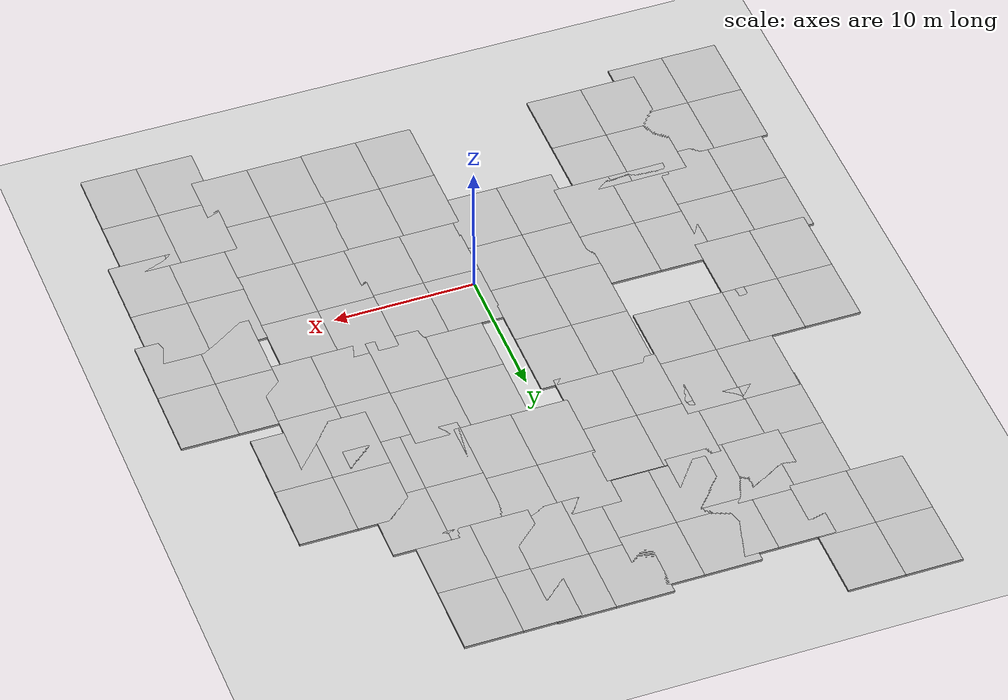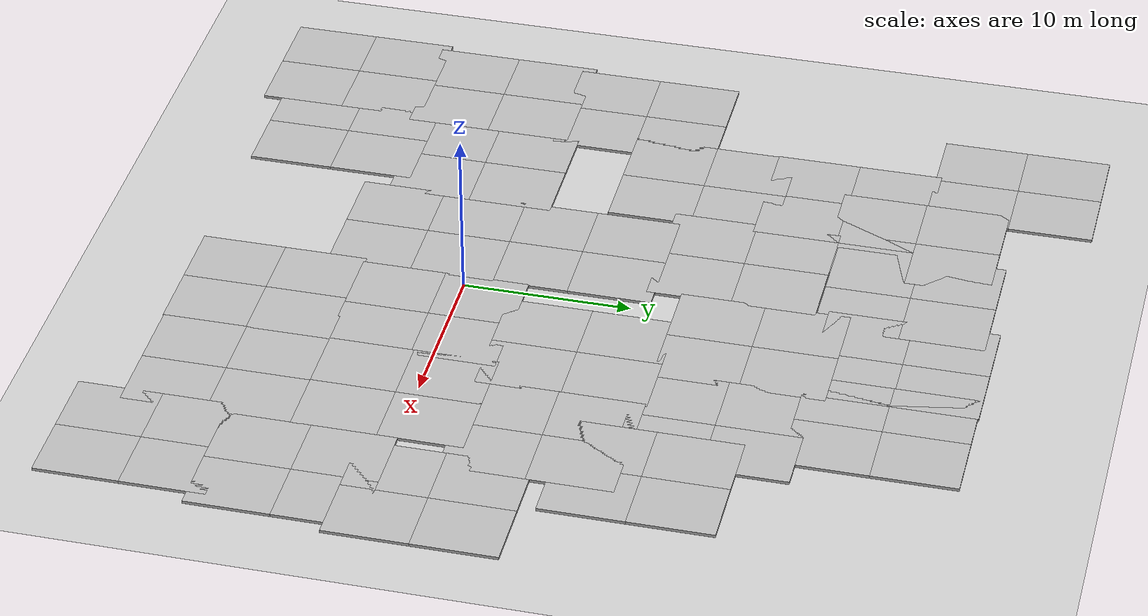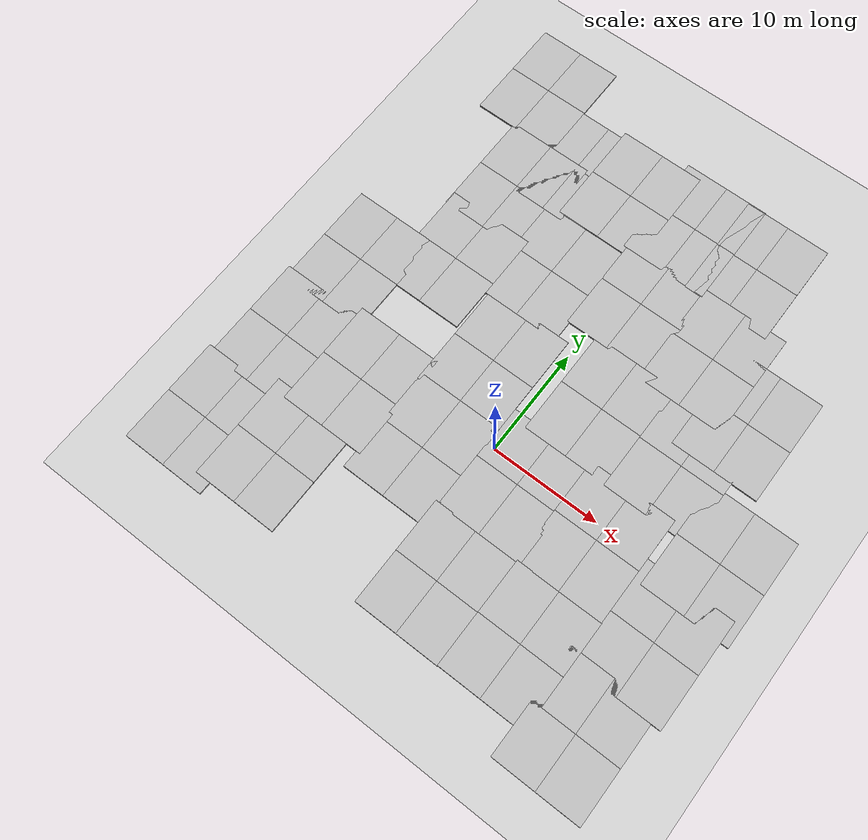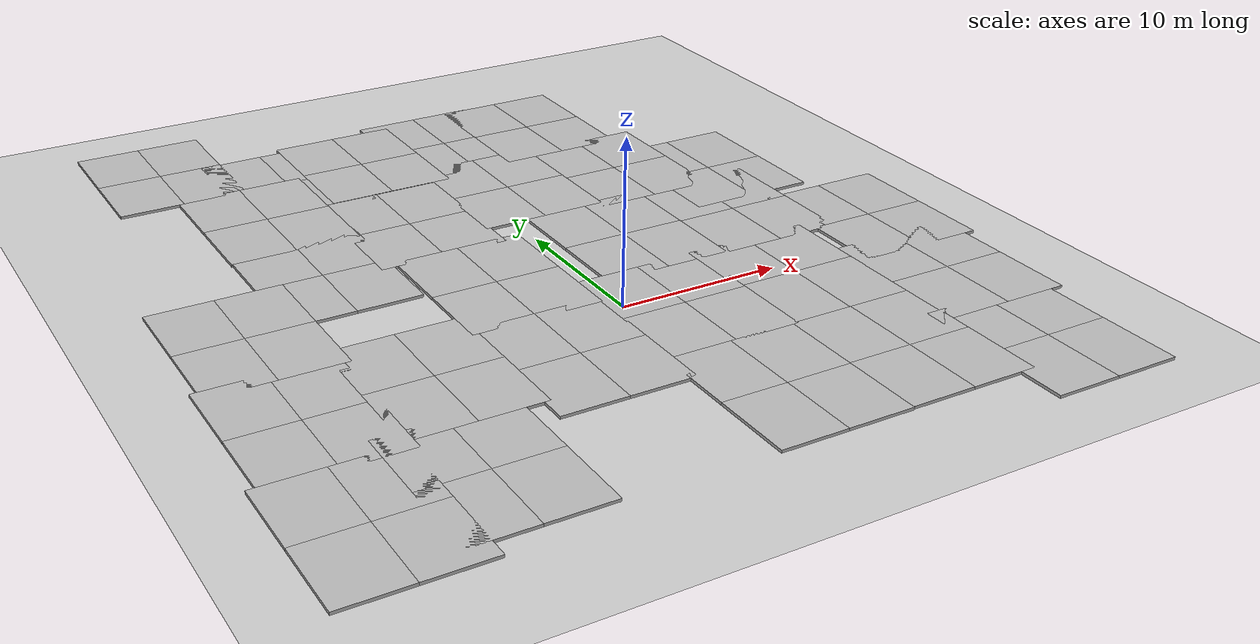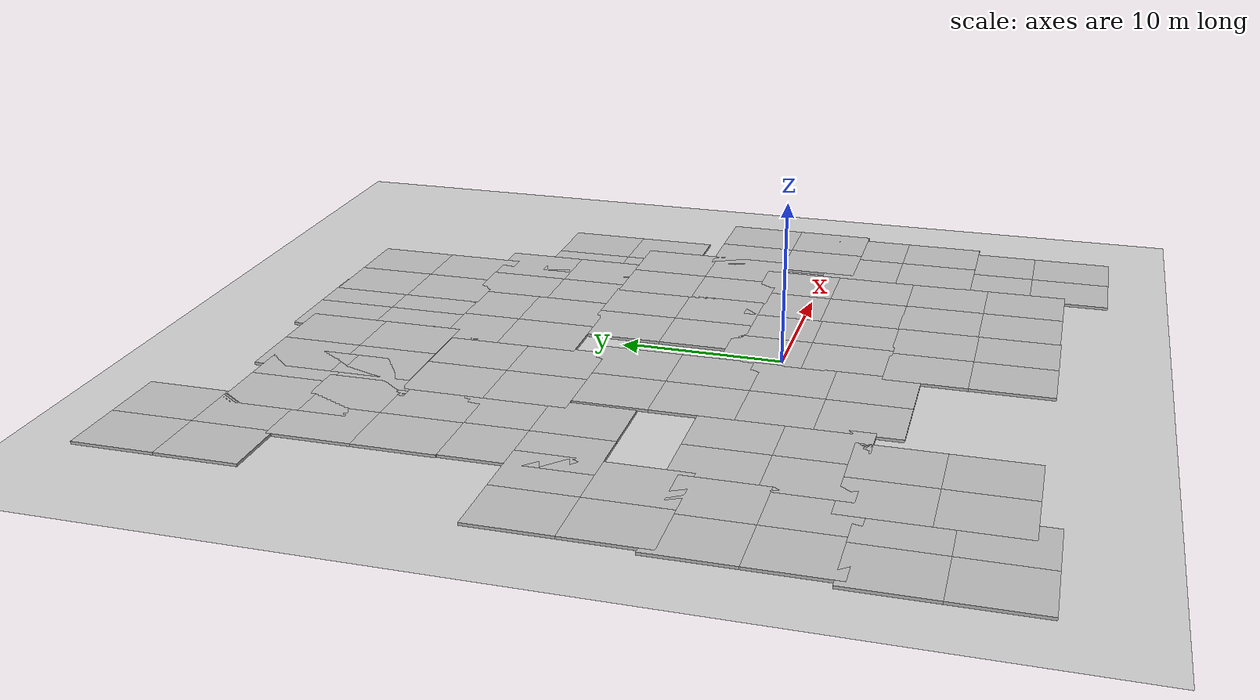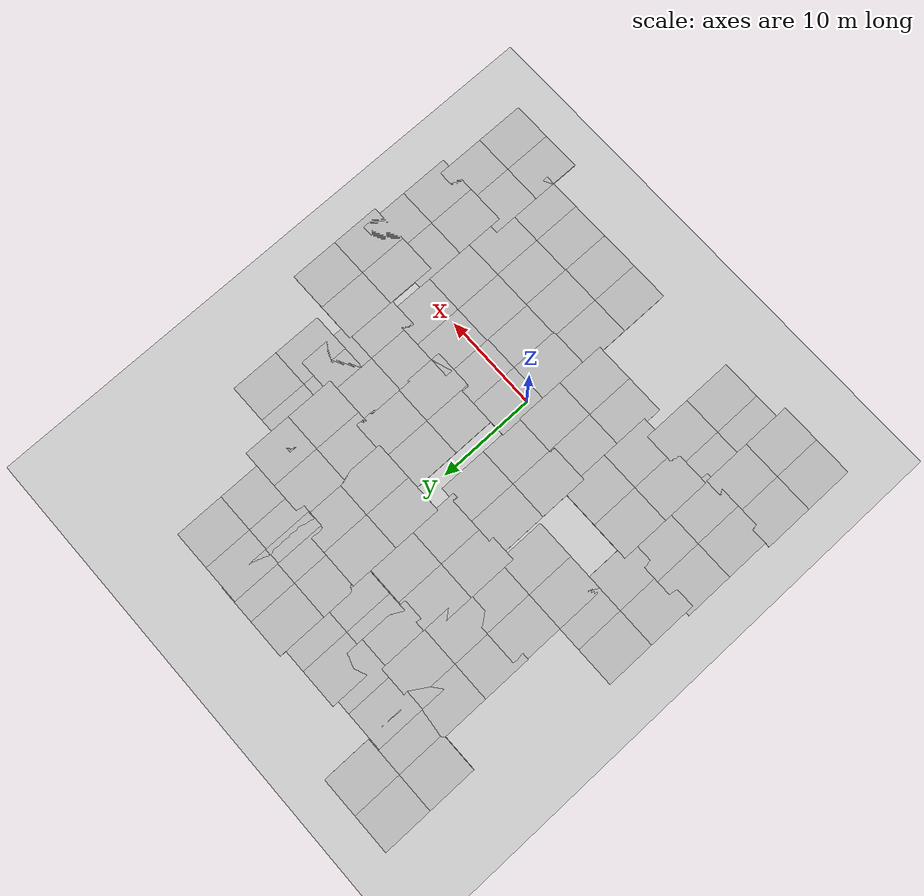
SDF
<sdf version="1.6">
 <world name="default">
  <model name="ground_plane">
   <static>1</static>
   <link name="link">
    <collision name="collision">
     <geometry><plane><normal>0 0 1</normal><size>100 100</size></plane></geometry>
     <surface><friction><ode><mu>100</mu><mu2>50</mu2></ode></friction></surface>
    </collision>
    <visual name="visual">
     <cast_shadows>0</cast_shadows>
     <geometry><plane><normal>0 0 1</normal><size>100 100</size></plane></geometry>
     <material>
      <script><uri>file://media/materials/scripts/gazebo.material</uri><name>Gazebo/Grey</name></script>
     </material>
    </visual>
   </link>
  </model>
  <model name="mud_box">
   <static>1</static>
   <link name="link">
    <collision name="collision"><geometry><box><size>8 10 0.2</size></box></geometry></collision>
    <visual name="visual_1">
     <pose>-2 2.5 0 0 -0 0</pose>
     <cast_shadows>0</cast_shadows>
     <geometry><box><size>4 5 0.2</size></box></geometry>
     <material>
      <script>
       <uri>model://mud_box/materials/scripts</uri>
       <uri>model://mud_box/materials/textures</uri>
       <name>vrc/mud</name>
      </script>
     </material>
    </visual>
    <visual name="visual_2">
     <pose>2 2.5 0 0 -0 0</pose>
     <cast_shadows>0</cast_shadows>
     <geometry><box><size>4 5 0.2</size></box></geometry>
     <material>
      <script>
       <uri>model://mud_box/materials/scripts</uri>
       <uri>model://mud_box/materials/textures</uri>
       <name>vrc/mud</name>
      </script>
     </material>
    </visual>
    <visual name="visual_3">
     <pose>2 -2.5 0 0 -0 0</pose>
     <cast_shadows>0</cast_shadows>
     <geometry><box><size>4 5 0.2</size></box></geometry>
     <material>
      <script>
       <uri>model://mud_box/materials/scripts</uri>
       <uri>model://mud_box/materials/textures</uri>
       <name>vrc/mud</name>
      </script>
     </material>
    </visual>
    <visual name="visual_4">
     <pose>-2 -2.5 0 0 -0 0</pose>
     <cast_shadows>0</cast_shadows>
     <geometry><box><size>4 5 0.2</size></box></geometry>
     <material>
      <script>
       <uri>model://mud_box/materials/scripts</uri>
       <uri>model://mud_box/materials/textures</uri>
       <name>vrc/mud</name>
      </script>
     </material>
    </visual>
   </link>
   <pose>10.8165 -11.0952 0 0 -0 0</pose>
  </model>
  <model name="mud_box_clone">
   <static>1</static>
   <link name="link">
    <collision name="collision"><geometry><box><size>8 10 0.2</size></box></geometry></collision>
    <visual name="visual_1">
     <pose>-2 2.5 0 0 -0 0</pose>
     <cast_shadows>0</cast_shadows>
     <geometry><box><size>4 5 0.2</size></box></geometry>
     <material>
      <script>
       <uri>model://mud_box/materials/scripts</uri>
       <uri>model://mud_box/materials/textures</uri>
       <name>vrc/mud</name>
      </script>
     </material>
    </visual>
    <visual name="visual_2">
     <pose>2 2.5 0 0 -0 0</pose>
     <cast_shadows>0</cast_shadows>
     <geometry><box><size>4 5 0.2</size></box></geometry>
     <material>
      <script>
       <uri>model://mud_box/materials/scripts</uri>
       <uri>model://mud_box/materials/textures</uri>
       <name>vrc/mud</name>
      </script>
     </material>
    </visual>
    <visual name="visual_3">
     <pose>2 -2.5 0 0 -0 0</pose>
     <cast_shadows>0</cast_shadows>
     <geometry><box><size>4 5 0.2</size></box></geometry>
     <material>
      <script>
       <uri>model://mud_box/materials/scripts</uri>
       <uri>model://mud_box/materials/textures</uri>
       <name>vrc/mud</name>
      </script>
     </material>
    </visual>
    <visual name="visual_4">
     <pose>-2 -2.5 0 0 -0 0</pose>
     <cast_shadows>0</cast_shadows>
     <geometry><box><size>4 5 0.2</size></box></geometry>
     <material>
      <script>
       <uri>model://mud_box/materials/scripts</uri>
       <uri>model://mud_box/materials/textures</uri>
       <name>vrc/mud</name>
      </script>
     </material>
    </visual>
   </link>
   <pose>2.87482 -11.1421 0 0 -0 0</pose>
  </model>
  <model name="mud_box_clone_0">
   <static>1</static>
   <link name="link">
    <collision name="collision"><geometry><box><size>8 10 0.2</size></box></geometry></collision>
    <visual name="visual_1">
     <pose>-2 2.5 0 0 -0 0</pose>
     <cast_shadows>0</cast_shadows>
     <geometry><box><size>4 5 0.2</size></box></geometry>
     <material>
      <script>
       <uri>model://mud_box/materials/scripts</uri>
       <uri>model://mud_box/materials/textures</uri>
       <name>vrc/mud</name>
      </script>
     </material>
    </visual>
    <visual name="visual_2">
     <pose>2 2.5 0 0 -0 0</pose>
     <cast_shadows>0</cast_shadows>
     <geometry><box><size>4 5 0.2</size></box></geometry>
     <material>
      <script>
       <uri>model://mud_box/materials/scripts</uri>
       <uri>model://mud_box/materials/textures</uri>
       <name>vrc/mud</name>
      </script>
     </material>
    </visual>
    <visual name="visual_3">
     <pose>2 -2.5 0 0 -0 0</pose>
     <cast_shadows>0</cast_shadows>
     <geometry><box><size>4 5 0.2</size></box></geometry>
     <material>
      <script>
       <uri>model://mud_box/materials/scripts</uri>
       <uri>model://mud_box/materials/textures</uri>
       <name>vrc/mud</name>
      </script>
     </material>
    </visual>
    <visual name="visual_4">
     <pose>-2 -2.5 0 0 -0 0</pose>
     <cast_shadows>0</cast_shadows>
     <geometry><box><size>4 5 0.2</size></box></geometry>
     <material>
      <script>
       <uri>model://mud_box/materials/scripts</uri>
       <uri>model://mud_box/materials/textures</uri>
       <name>vrc/mud</name>
      </script>
     </material>
    </visual>
   </link>
   <pose>10.7714 -1.1411 0 0 -0 0</pose>
  </model>
  <model name="mud_box_clone_1">
   <static>1</static>
   <link name="link">
    <collision name="collision"><geometry><box><size>8 10 0.2</size></box></geometry></collision>
    <visual name="visual_1">
     <pose>-2 2.5 0 0 -0 0</pose>
     <cast_shadows>0</cast_shadows>
     <geometry><box><size>4 5 0.2</size></box></geometry>
     <material>
      <script>
       <uri>model://mud_box/materials/scripts</uri>
       <uri>model://mud_box/materials/textures</uri>
       <name>vrc/mud</name>
      </script>
     </material>
    </visual>
    <visual name="visual_2">
     <pose>2 2.5 0 0 -0 0</pose>
     <cast_shadows>0</cast_shadows>
     <geometry><box><size>4 5 0.2</size></box></geometry>
     <material>
      <script>
       <uri>model://mud_box/materials/scripts</uri>
       <uri>model://mud_box/materials/textures</uri>
       <name>vrc/mud</name>
      </script>
     </material>
    </visual>
    <visual name="visual_3">
     <pose>2 -2.5 0 0 -0 0</pose>
     <cast_shadows>0</cast_shadows>
     <geometry><box><size>4 5 0.2</size></box></geometry>
     <material>
      <script>
       <uri>model://mud_box/materials/scripts</uri>
       <uri>model://mud_box/materials/textures</uri>
       <name>vrc/mud</name>
      </script>
     </material>
    </visual>
    <visual name="visual_4">
     <pose>-2 -2.5 0 0 -0 0</pose>
     <cast_shadows>0</cast_shadows>
     <geometry><box><size>4 5 0.2</size></box></geometry>
     <material>
      <script>
       <uri>model://mud_box/materials/scripts</uri>
       <uri>model://mud_box/materials/textures</uri>
       <name>vrc/mud</name>
      </script>
     </material>
    </visual>
   </link>
   <pose>3.19815 -1.27428 0 0 -0 0</pose>
  </model>
  <model name="mud_box_clone_2">
   <static>1</static>
   <link name="link">
    <collision name="collision"><geometry><box><size>8 10 0.2</size></box></geometry></collision>
    <visual name="visual_1">
     <pose>-2 2.5 0 0 -0 0</pose>
     <cast_shadows>0</cast_shadows>
     <geometry><box><size>4 5 0.2</size></box></geometry>
     <material>
      <script>
       <uri>model://mud_box/materials/scripts</uri>
       <uri>model://mud_box/materials/textures</uri>
       <name>vrc/mud</name>
      </script>
     </material>
    </visual>
    <visual name="visual_2">
     <pose>2 2.5 0 0 -0 0</pose>
     <cast_shadows>0</cast_shadows>
     <geometry><box><size>4 5 0.2</size></box></geometry>
     <material>
      <script>
       <uri>model://mud_box/materials/scripts</uri>
       <uri>model://mud_box/materials/textures</uri>
       <name>vrc/mud</name>
      </script>
     </material>
    </visual>
    <visual name="visual_3">
     <pose>2 -2.5 0 0 -0 0</pose>
     <cast_shadows>0</cast_shadows>
     <geometry><box><size>4 5 0.2</size></box></geometry>
     <material>
      <script>
       <uri>model://mud_box/materials/scripts</uri>
       <uri>model://mud_box/materials/textures</uri>
       <name>vrc/mud</name>
      </script>
     </material>
    </visual>
    <visual name="visual_4">
     <pose>-2 -2.5 0 0 -0 0</pose>
     <cast_shadows>0</cast_shadows>
     <geometry><box><size>4 5 0.2</size></box></geometry>
     <material>
      <script>
       <uri>model://mud_box/materials/scripts</uri>
       <uri>model://mud_box/materials/textures</uri>
       <name>vrc/mud</name>
      </script>
     </material>
    </visual>
   </link>
   <pose>-4.68734 -3.40897 0 0 -0 0</pose>
  </model>
  <model name="mud_box_clone_3">
   <static>1</static>
   <link name="link">
    <collision name="collision"><geometry><box><size>8 10 0.2</size></box></geometry></collision>
    <visual name="visual_1">
     <pose>-2 2.5 0 0 -0 0</pose>
     <cast_shadows>0</cast_shadows>
     <geometry><box><size>4 5 0.2</size></box></geometry>
     <material>
      <script>
       <uri>model://mud_box/materials/scripts</uri>
       <uri>model://mud_box/materials/textures</uri>
       <name>vrc/mud</name>
      </script>
     </material>
    </visual>
    <visual name="visual_2">
     <pose>2 2.5 0 0 -0 0</pose>
     <cast_shadows>0</cast_shadows>
     <geometry><box><size>4 5 0.2</size></box></geometry>
     <material>
      <script>
       <uri>model://mud_box/materials/scripts</uri>
       <uri>model://mud_box/materials/textures</uri>
       <name>vrc/mud</name>
      </script>
     </material>
    </visual>
    <visual name="visual_3">
     <pose>2 -2.5 0 0 -0 0</pose>
     <cast_shadows>0</cast_shadows>
     <geometry><box><size>4 5 0.2</size></box></geometry>
     <material>
      <script>
       <uri>model://mud_box/materials/scripts</uri>
       <uri>model://mud_box/materials/textures</uri>
       <name>vrc/mud</name>
      </script>
     </material>
    </visual>
    <visual name="visual_4">
     <pose>-2 -2.5 0 0 -0 0</pose>
     <cast_shadows>0</cast_shadows>
     <geometry><box><size>4 5 0.2</size></box></geometry>
     <material>
      <script>
       <uri>model://mud_box/materials/scripts</uri>
       <uri>model://mud_box/materials/textures</uri>
       <name>vrc/mud</name>
      </script>
     </material>
    </visual>
   </link>
   <pose>-12.3073 -1.84403 0 0 -0 0</pose>
  </model>
  <model name="mud_box_clone_4">
   <static>1</static>
   <link name="link">
    <collision name="collision"><geometry><box><size>8 10 0.2</size></box></geometry></collision>
    <visual name="visual_1">
     <pose>-2 2.5 0 0 -0 0</pose>
     <cast_shadows>0</cast_shadows>
     <geometry><box><size>4 5 0.2</size></box></geometry>
     <material>
      <script>
       <uri>model://mud_box/materials/scripts</uri>
       <uri>model://mud_box/materials/textures</uri>
       <name>vrc/mud</name>
      </script>
     </material>
    </visual>
    <visual name="visual_2">
     <pose>2 2.5 0 0 -0 0</pose>
     <cast_shadows>0</cast_shadows>
     <geometry><box><size>4 5 0.2</size></box></geometry>
     <material>
      <script>
       <uri>model://mud_box/materials/scripts</uri>
       <uri>model://mud_box/materials/textures</uri>
       <name>vrc/mud</name>
      </script>
     </material>
    </visual>
    <visual name="visual_3">
     <pose>2 -2.5 0 0 -0 0</pose>
     <cast_shadows>0</cast_shadows>
     <geometry><box><size>4 5 0.2</size></box></geometry>
     <material>
      <script>
       <uri>model://mud_box/materials/scripts</uri>
       <uri>model://mud_box/materials/textures</uri>
       <name>vrc/mud</name>
      </script>
     </material>
    </visual>
    <visual name="visual_4">
     <pose>-2 -2.5 0 0 -0 0</pose>
     <cast_shadows>0</cast_shadows>
     <geometry><box><size>4 5 0.2</size></box></geometry>
     <material>
      <script>
       <uri>model://mud_box/materials/scripts</uri>
       <uri>model://mud_box/materials/textures</uri>
       <name>vrc/mud</name>
      </script>
     </material>
    </visual>
   </link>
   <pose>-4.70215 6.03232 0 0 -0 0</pose>
  </model>
  <model name="mud_box_clone_5">
   <static>1</static>
   <link name="link">
    <collision name="collision"><geometry><box><size>8 10 0.2</size></box></geometry></collision>
    <visual name="visual_1">
     <pose>-2 2.5 0 0 -0 0</pose>
     <cast_shadows>0</cast_shadows>
     <geometry><box><size>4 5 0.2</size></box></geometry>
     <material>
      <script>
       <uri>model://mud_box/materials/scripts</uri>
       <uri>model://mud_box/materials/textures</uri>
       <name>vrc/mud</name>
      </script>
     </material>
    </visual>
    <visual name="visual_2">
     <pose>2 2.5 0 0 -0 0</pose>
     <cast_shadows>0</cast_shadows>
     <geometry><box><size>4 5 0.2</size></box></geometry>
     <material>
      <script>
       <uri>model://mud_box/materials/scripts</uri>
       <uri>model://mud_box/materials/textures</uri>
       <name>vrc/mud</name>
      </script>
     </material>
    </visual>
    <visual name="visual_3">
     <pose>2 -2.5 0 0 -0 0</pose>
     <cast_shadows>0</cast_shadows>
     <geometry><box><size>4 5 0.2</size></box></geometry>
     <material>
      <script>
       <uri>model://mud_box/materials/scripts</uri>
       <uri>model://mud_box/materials/textures</uri>
       <name>vrc/mud</name>
      </script>
     </material>
    </visual>
    <visual name="visual_4">
     <pose>-2 -2.5 0 0 -0 0</pose>
     <cast_shadows>0</cast_shadows>
     <geometry><box><size>4 5 0.2</size></box></geometry>
     <material>
      <script>
       <uri>model://mud_box/materials/scripts</uri>
       <uri>model://mud_box/materials/textures</uri>
       <name>vrc/mud</name>
      </script>
     </material>
    </visual>
   </link>
   <pose>4.84706 7.94256 0 0 -0 0</pose>
  </model>
  <model name="mud_box_clone_6">
   <static>1</static>
   <link name="link">
    <collision name="collision"><geometry><box><size>8 10 0.2</size></box></geometry></collision>
    <visual name="visual_1">
     <pose>-2 2.5 0 0 -0 0</pose>
     <cast_shadows>0</cast_shadows>
     <geometry><box><size>4 5 0.2</size></box></geometry>
     <material>
      <script>
       <uri>model://mud_box/materials/scripts</uri>
       <uri>model://mud_box/materials/textures</uri>
       <name>vrc/mud</name>
      </script>
     </material>
    </visual>
    <visual name="visual_2">
     <pose>2 2.5 0 0 -0 0</pose>
     <cast_shadows>0</cast_shadows>
     <geometry><box><size>4 5 0.2</size></box></geometry>
     <material>
      <script>
       <uri>model://mud_box/materials/scripts</uri>
       <uri>model://mud_box/materials/textures</uri>
       <name>vrc/mud</name>
      </script>
     </material>
    </visual>
    <visual name="visual_3">
     <pose>2 -2.5 0 0 -0 0</pose>
     <cast_shadows>0</cast_shadows>
     <geometry><box><size>4 5 0.2</size></box></geometry>
     <material>
      <script>
       <uri>model://mud_box/materials/scripts</uri>
       <uri>model://mud_box/materials/textures</uri>
       <name>vrc/mud</name>
      </script>
     </material>
    </visual>
    <visual name="visual_4">
     <pose>-2 -2.5 0 0 -0 0</pose>
     <cast_shadows>0</cast_shadows>
     <geometry><box><size>4 5 0.2</size></box></geometry>
     <material>
      <script>
       <uri>model://mud_box/materials/scripts</uri>
       <uri>model://mud_box/materials/textures</uri>
       <name>vrc/mud</name>
      </script>
     </material>
    </visual>
   </link>
   <pose>12.6473 7.83678 0 0 -0 0</pose>
  </model>
  <model name="mud_box_clone_7">
   <static>1</static>
   <link name="link">
    <collision name="collision"><geometry><box><size>8 10 0.2</size></box></geometry></collision>
    <visual name="visual_1">
     <pose>-2 2.5 0 0 -0 0</pose>
     <cast_shadows>0</cast_shadows>
     <geometry><box><size>4 5 0.2</size></box></geometry>
     <material>
      <script>
       <uri>model://mud_box/materials/scripts</uri>
       <uri>model://mud_box/materials/textures</uri>
       <name>vrc/mud</name>
      </script>
     </material>
    </visual>
    <visual name="visual_2">
     <pose>2 2.5 0 0 -0 0</pose>
     <cast_shadows>0</cast_shadows>
     <geometry><box><size>4 5 0.2</size></box></geometry>
     <material>
      <script>
       <uri>model://mud_box/materials/scripts</uri>
       <uri>model://mud_box/materials/textures</uri>
       <name>vrc/mud</name>
      </script>
     </material>
    </visual>
    <visual name="visual_3">
     <pose>2 -2.5 0 0 -0 0</pose>
     <cast_shadows>0</cast_shadows>
     <geometry><box><size>4 5 0.2</size></box></geometry>
     <material>
      <script>
       <uri>model://mud_box/materials/scripts</uri>
       <uri>model://mud_box/materials/textures</uri>
       <name>vrc/mud</name>
      </script>
     </material>
    </visual>
    <visual name="visual_4">
     <pose>-2 -2.5 0 0 -0 0</pose>
     <cast_shadows>0</cast_shadows>
     <geometry><box><size>4 5 0.2</size></box></geometry>
     <material>
      <script>
       <uri>model://mud_box/materials/scripts</uri>
       <uri>model://mud_box/materials/textures</uri>
       <name>vrc/mud</name>
      </script>
     </material>
    </visual>
   </link>
   <pose>-5.70582 15.5445 0 0 -0 0</pose>
  </model>
  <model name="mud_box_clone_8">
   <static>1</static>
   <link name="link">
    <collision name="collision"><geometry><box><size>8 10 0.2</size></box></geometry></collision>
    <visual name="visual_1">
     <pose>-2 2.5 0 0 -0 0</pose>
     <cast_shadows>0</cast_shadows>
     <geometry><box><size>4 5 0.2</size></box></geometry>
     <material>
      <script>
       <uri>model://mud_box/materials/scripts</uri>
       <uri>model://mud_box/materials/textures</uri>
       <name>vrc/mud</name>
      </script>
     </material>
    </visual>
    <visual name="visual_2">
     <pose>2 2.5 0 0 -0 0</pose>
     <cast_shadows>0</cast_shadows>
     <geometry><box><size>4 5 0.2</size></box></geometry>
     <material>
      <script>
       <uri>model://mud_box/materials/scripts</uri>
       <uri>model://mud_box/materials/textures</uri>
       <name>vrc/mud</name>
      </script>
     </material>
    </visual>
    <visual name="visual_3">
     <pose>2 -2.5 0 0 -0 0</pose>
     <cast_shadows>0</cast_shadows>
     <geometry><box><size>4 5 0.2</size></box></geometry>
     <material>
      <script>
       <uri>model://mud_box/materials/scripts</uri>
       <uri>model://mud_box/materials/textures</uri>
       <name>vrc/mud</name>
      </script>
     </material>
    </visual>
    <visual name="visual_4">
     <pose>-2 -2.5 0 0 -0 0</pose>
     <cast_shadows>0</cast_shadows>
     <geometry><box><size>4 5 0.2</size></box></geometry>
     <material>
      <script>
       <uri>model://mud_box/materials/scripts</uri>
       <uri>model://mud_box/materials/textures</uri>
       <name>vrc/mud</name>
      </script>
     </material>
    </visual>
   </link>
   <pose>-12.9373 11.5852 0 0 -0 0</pose>
  </model>
  <model name="mud_box_clone_9">
   <static>1</static>
   <link name="link">
    <collision name="collision"><geometry><box><size>8 10 0.2</size></box></geometry></collision>
    <visual name="visual_1">
     <pose>-2 2.5 0 0 -0 0</pose>
     <cast_shadows>0</cast_shadows>
     <geometry><box><size>4 5 0.2</size></box></geometry>
     <material>
      <script>
       <uri>model://mud_box/materials/scripts</uri>
       <uri>model://mud_box/materials/textures</uri>
       <name>vrc/mud</name>
      </script>
     </material>
    </visual>
    <visual name="visual_2">
     <pose>2 2.5 0 0 -0 0</pose>
     <cast_shadows>0</cast_shadows>
     <geometry><box><size>4 5 0.2</size></box></geometry>
     <material>
      <script>
       <uri>model://mud_box/materials/scripts</uri>
       <uri>model://mud_box/materials/textures</uri>
       <name>vrc/mud</name>
      </script>
     </material>
    </visual>
    <visual name="visual_3">
     <pose>2 -2.5 0 0 -0 0</pose>
     <cast_shadows>0</cast_shadows>
     <geometry><box><size>4 5 0.2</size></box></geometry>
     <material>
      <script>
       <uri>model://mud_box/materials/scripts</uri>
       <uri>model://mud_box/materials/textures</uri>
       <name>vrc/mud</name>
      </script>
     </material>
    </visual>
    <visual name="visual_4">
     <pose>-2 -2.5 0 0 -0 0</pose>
     <cast_shadows>0</cast_shadows>
     <geometry><box><size>4 5 0.2</size></box></geometry>
     <material>
      <script>
       <uri>model://mud_box/materials/scripts</uri>
       <uri>model://mud_box/materials/textures</uri>
       <name>vrc/mud</name>
      </script>
     </material>
    </visual>
   </link>
   <pose>2.05999 17.5856 0 0 -0 0</pose>
  </model>
  <model name="mud_box_clone_10">
   <static>1</static>
   <link name="link">
    <collision name="collision"><geometry><box><size>8 10 0.2</size></box></geometry></collision>
    <visual name="visual_1">
     <pose>-2 2.5 0 0 -0 0</pose>
     <cast_shadows>0</cast_shadows>
     <geometry><box><size>4 5 0.2</size></box></geometry>
     <material>
      <script>
       <uri>model://mud_box/materials/scripts</uri>
       <uri>model://mud_box/materials/textures</uri>
       <name>vrc/mud</name>
      </script>
     </material>
    </visual>
    <visual name="visual_2">
     <pose>2 2.5 0 0 -0 0</pose>
     <cast_shadows>0</cast_shadows>
     <geometry><box><size>4 5 0.2</size></box></geometry>
     <material>
      <script>
       <uri>model://mud_box/materials/scripts</uri>
       <uri>model://mud_box/materials/textures</uri>
       <name>vrc/mud</name>
      </script>
     </material>
    </visual>
    <visual name="visual_3">
     <pose>2 -2.5 0 0 -0 0</pose>
     <cast_shadows>0</cast_shadows>
     <geometry><box><size>4 5 0.2</size></box></geometry>
     <material>
      <script>
       <uri>model://mud_box/materials/scripts</uri>
       <uri>model://mud_box/materials/textures</uri>
       <name>vrc/mud</name>
      </script>
     </material>
    </visual>
    <visual name="visual_4">
     <pose>-2 -2.5 0 0 -0 0</pose>
     <cast_shadows>0</cast_shadows>
     <geometry><box><size>4 5 0.2</size></box></geometry>
     <material>
      <script>
       <uri>model://mud_box/materials/scripts</uri>
       <uri>model://mud_box/materials/textures</uri>
       <name>vrc/mud</name>
      </script>
     </material>
    </visual>
   </link>
   <pose>9.61548 17.0189 0 0 -0 0</pose>
  </model>
  <model name="mud_box_clone_8_clone">
   <static>1</static>
   <link name="link">
    <collision name="collision"><geometry><box><size>8 10 0.2</size></box></geometry></collision>
    <visual name="visual_1">
     <pose>-2 2.5 0 0 -0 0</pose>
     <cast_shadows>0</cast_shadows>
     <geometry><box><size>4 5 0.2</size></box></geometry>
     <material>
      <script>
       <uri>model://mud_box/materials/scripts</uri>
       <uri>model://mud_box/materials/textures</uri>
       <name>vrc/mud</name>
      </script>
     </material>
    </visual>
    <visual name="visual_2">
     <pose>2 2.5 0 0 -0 0</pose>
     <cast_shadows>0</cast_shadows>
     <geometry><box><size>4 5 0.2</size></box></geometry>
     <material>
      <script>
       <uri>model://mud_box/materials/scripts</uri>
       <uri>model://mud_box/materials/textures</uri>
       <name>vrc/mud</name>
      </script>
     </material>
    </visual>
    <visual name="visual_3">
     <pose>2 -2.5 0 0 -0 0</pose>
     <cast_shadows>0</cast_shadows>
     <geometry><box><size>4 5 0.2</size></box></geometry>
     <material>
      <script>
       <uri>model://mud_box/materials/scripts</uri>
       <uri>model://mud_box/materials/textures</uri>
       <name>vrc/mud</name>
      </script>
     </material>
    </visual>
    <visual name="visual_4">
     <pose>-2 -2.5 0 0 -0 0</pose>
     <cast_shadows>0</cast_shadows>
     <geometry><box><size>4 5 0.2</size></box></geometry>
     <material>
      <script>
       <uri>model://mud_box/materials/scripts</uri>
       <uri>model://mud_box/materials/textures</uri>
       <name>vrc/mud</name>
      </script>
     </material>
    </visual>
   </link>
   <pose>-12.9975 20.4027 0 0 -0 0</pose>
  </model>
  <model name="mud_box_clone_8_clone_0">
   <static>1</static>
   <link name="link">
    <collision name="collision"><geometry><box><size>8 10 0.2</size></box></geometry></collision>
    <visual name="visual_1">
     <pose>-2 2.5 0 0 -0 0</pose>
     <cast_shadows>0</cast_shadows>
     <geometry><box><size>4 5 0.2</size></box></geometry>
     <material>
      <script>
       <uri>model://mud_box/materials/scripts</uri>
       <uri>model://mud_box/materials/textures</uri>
       <name>vrc/mud</name>
      </script>
     </material>
    </visual>
    <visual name="visual_2">
     <pose>2 2.5 0 0 -0 0</pose>
     <cast_shadows>0</cast_shadows>
     <geometry><box><size>4 5 0.2</size></box></geometry>
     <material>
      <script>
       <uri>model://mud_box/materials/scripts</uri>
       <uri>model://mud_box/materials/textures</uri>
       <name>vrc/mud</name>
      </script>
     </material>
    </visual>
    <visual name="visual_3">
     <pose>2 -2.5 0 0 -0 0</pose>
     <cast_shadows>0</cast_shadows>
     <geometry><box><size>4 5 0.2</size></box></geometry>
     <material>
      <script>
       <uri>model://mud_box/materials/scripts</uri>
       <uri>model://mud_box/materials/textures</uri>
       <name>vrc/mud</name>
      </script>
     </material>
    </visual>
    <visual name="visual_4">
     <pose>-2 -2.5 0 0 -0 0</pose>
     <cast_shadows>0</cast_shadows>
     <geometry><box><size>4 5 0.2</size></box></geometry>
     <material>
      <script>
       <uri>model://mud_box/materials/scripts</uri>
       <uri>model://mud_box/materials/textures</uri>
       <name>vrc/mud</name>
      </script>
     </material>
    </visual>
   </link>
   <pose>-4.56717 25.6056 0 0 -0 0</pose>
  </model>
  <model name="mud_box_clone_8_clone_1">
   <static>1</static>
   <link name="link">
    <collision name="collision"><geometry><box><size>8 10 0.2</size></box></geometry></collision>
    <visual name="visual_1">
     <pose>-2 2.5 0 0 -0 0</pose>
     <cast_shadows>0</cast_shadows>
     <geometry><box><size>4 5 0.2</size></box></geometry>
     <material>
      <script>
       <uri>model://mud_box/materials/scripts</uri>
       <uri>model://mud_box/materials/textures</uri>
       <name>vrc/mud</name>
      </script>
     </material>
    </visual>
    <visual name="visual_2">
     <pose>2 2.5 0 0 -0 0</pose>
     <cast_shadows>0</cast_shadows>
     <geometry><box><size>4 5 0.2</size></box></geometry>
     <material>
      <script>
       <uri>model://mud_box/materials/scripts</uri>
       <uri>model://mud_box/materials/textures</uri>
       <name>vrc/mud</name>
      </script>
     </material>
    </visual>
    <visual name="visual_3">
     <pose>2 -2.5 0 0 -0 0</pose>
     <cast_shadows>0</cast_shadows>
     <geometry><box><size>4 5 0.2</size></box></geometry>
     <material>
      <script>
       <uri>model://mud_box/materials/scripts</uri>
       <uri>model://mud_box/materials/textures</uri>
       <name>vrc/mud</name>
      </script>
     </material>
    </visual>
    <visual name="visual_4">
     <pose>-2 -2.5 0 0 -0 0</pose>
     <cast_shadows>0</cast_shadows>
     <geometry><box><size>4 5 0.2</size></box></geometry>
     <material>
      <script>
       <uri>model://mud_box/materials/scripts</uri>
       <uri>model://mud_box/materials/textures</uri>
       <name>vrc/mud</name>
      </script>
     </material>
    </visual>
   </link>
   <pose>8.06738 26.1887 0 0 -0 0</pose>
  </model>
  <model name="mud_box_clone_8_clone_2">
   <static>1</static>
   <link name="link">
    <collision name="collision"><geometry><box><size>8 10 0.2</size></box></geometry></collision>
    <visual name="visual_1">
     <pose>-2 2.5 0 0 -0 0</pose>
     <cast_shadows>0</cast_shadows>
     <geometry><box><size>4 5 0.2</size></box></geometry>
     <material>
      <script>
       <uri>model://mud_box/materials/scripts</uri>
       <uri>model://mud_box/materials/textures</uri>
       <name>vrc/mud</name>
      </script>
     </material>
    </visual>
    <visual name="visual_2">
     <pose>2 2.5 0 0 -0 0</pose>
     <cast_shadows>0</cast_shadows>
     <geometry><box><size>4 5 0.2</size></box></geometry>
     <material>
      <script>
       <uri>model://mud_box/materials/scripts</uri>
       <uri>model://mud_box/materials/textures</uri>
       <name>vrc/mud</name>
      </script>
     </material>
    </visual>
    <visual name="visual_3">
     <pose>2 -2.5 0 0 -0 0</pose>
     <cast_shadows>0</cast_shadows>
     <geometry><box><size>4 5 0.2</size></box></geometry>
     <material>
      <script>
       <uri>model://mud_box/materials/scripts</uri>
       <uri>model://mud_box/materials/textures</uri>
       <name>vrc/mud</name>
      </script>
     </material>
    </visual>
    <visual name="visual_4">
     <pose>-2 -2.5 0 0 -0 0</pose>
     <cast_shadows>0</cast_shadows>
     <geometry><box><size>4 5 0.2</size></box></geometry>
     <material>
      <script>
       <uri>model://mud_box/materials/scripts</uri>
       <uri>model://mud_box/materials/textures</uri>
       <name>vrc/mud</name>
      </script>
     </material>
    </visual>
   </link>
   <pose>-9.95414 25.0042 0 0 -0 0</pose>
  </model>
  <model name="mud_box_clone_8_clone_3">
   <static>1</static>
   <link name="link">
    <collision name="collision"><geometry><box><size>8 10 0.2</size></box></geometry></collision>
    <visual name="visual_1">
     <pose>-2 2.5 0 0 -0 0</pose>
     <cast_shadows>0</cast_shadows>
     <geometry><box><size>4 5 0.2</size></box></geometry>
     <material>
      <script>
       <uri>model://mud_box/materials/scripts</uri>
       <uri>model://mud_box/materials/textures</uri>
       <name>vrc/mud</name>
      </script>
     </material>
    </visual>
    <visual name="visual_2">
     <pose>2 2.5 0 0 -0 0</pose>
     <cast_shadows>0</cast_shadows>
     <geometry><box><size>4 5 0.2</size></box></geometry>
     <material>
      <script>
       <uri>model://mud_box/materials/scripts</uri>
       <uri>model://mud_box/materials/textures</uri>
       <name>vrc/mud</name>
      </script>
     </material>
    </visual>
    <visual name="visual_3">
     <pose>2 -2.5 0 0 -0 0</pose>
     <cast_shadows>0</cast_shadows>
     <geometry><box><size>4 5 0.2</size></box></geometry>
     <material>
      <script>
       <uri>model://mud_box/materials/scripts</uri>
       <uri>model://mud_box/materials/textures</uri>
       <name>vrc/mud</name>
      </script>
     </material>
    </visual>
    <visual name="visual_4">
     <pose>-2 -2.5 0 0 -0 0</pose>
     <cast_shadows>0</cast_shadows>
     <geometry><box><size>4 5 0.2</size></box></geometry>
     <material>
      <script>
       <uri>model://mud_box/materials/scripts</uri>
       <uri>model://mud_box/materials/textures</uri>
       <name>vrc/mud</name>
      </script>
     </material>
    </visual>
   </link>
   <pose>1.75909 26.2514 0 0 -0 0</pose>
  </model>
  <model name="mud_box_clone_8_clone_4">
   <static>1</static>
   <link name="link">
    <collision name="collision"><geometry><box><size>8 10 0.2</size></box></geometry></collision>
    <visual name="visual_1">
     <pose>-2 2.5 0 0 -0 0</pose>
     <cast_shadows>0</cast_shadows>
     <geometry><box><size>4 5 0.2</size></box></geometry>
     <material>
      <script>
       <uri>model://mud_box/materials/scripts</uri>
       <uri>model://mud_box/materials/textures</uri>
       <name>vrc/mud</name>
      </script>
     </material>
    </visual>
    <visual name="visual_2">
     <pose>2 2.5 0 0 -0 0</pose>
     <cast_shadows>0</cast_shadows>
     <geometry><box><size>4 5 0.2</size></box></geometry>
     <material>
      <script>
       <uri>model://mud_box/materials/scripts</uri>
       <uri>model://mud_box/materials/textures</uri>
       <name>vrc/mud</name>
      </script>
     </material>
    </visual>
    <visual name="visual_3">
     <pose>2 -2.5 0 0 -0 0</pose>
     <cast_shadows>0</cast_shadows>
     <geometry><box><size>4 5 0.2</size></box></geometry>
     <material>
      <script>
       <uri>model://mud_box/materials/scripts</uri>
       <uri>model://mud_box/materials/textures</uri>
       <name>vrc/mud</name>
      </script>
     </material>
    </visual>
    <visual name="visual_4">
     <pose>-2 -2.5 0 0 -0 0</pose>
     <cast_shadows>0</cast_shadows>
     <geometry><box><size>4 5 0.2</size></box></geometry>
     <material>
      <script>
       <uri>model://mud_box/materials/scripts</uri>
       <uri>model://mud_box/materials/textures</uri>
       <name>vrc/mud</name>
      </script>
     </material>
    </visual>
   </link>
   <pose>14.966 14.0075 0 0 -0 0</pose>
  </model>
  <model name="mud_box_clone_8_clone_5">
   <static>1</static>
   <link name="link">
    <collision name="collision"><geometry><box><size>8 10 0.2</size></box></geometry></collision>
    <visual name="visual_1">
     <pose>-2 2.5 0 0 -0 0</pose>
     <cast_shadows>0</cast_shadows>
     <geometry><box><size>4 5 0.2</size></box></geometry>
     <material>
      <script>
       <uri>model://mud_box/materials/scripts</uri>
       <uri>model://mud_box/materials/textures</uri>
       <name>vrc/mud</name>
      </script>
     </material>
    </visual>
    <visual name="visual_2">
     <pose>2 2.5 0 0 -0 0</pose>
     <cast_shadows>0</cast_shadows>
     <geometry><box><size>4 5 0.2</size></box></geometry>
     <material>
      <script>
       <uri>model://mud_box/materials/scripts</uri>
       <uri>model://mud_box/materials/textures</uri>
       <name>vrc/mud</name>
      </script>
     </material>
    </visual>
    <visual name="visual_3">
     <pose>2 -2.5 0 0 -0 0</pose>
     <cast_shadows>0</cast_shadows>
     <geometry><box><size>4 5 0.2</size></box></geometry>
     <material>
      <script>
       <uri>model://mud_box/materials/scripts</uri>
       <uri>model://mud_box/materials/textures</uri>
       <name>vrc/mud</name>
      </script>
     </material>
    </visual>
    <visual name="visual_4">
     <pose>-2 -2.5 0 0 -0 0</pose>
     <cast_shadows>0</cast_shadows>
     <geometry><box><size>4 5 0.2</size></box></geometry>
     <material>
      <script>
       <uri>model://mud_box/materials/scripts</uri>
       <uri>model://mud_box/materials/textures</uri>
       <name>vrc/mud</name>
      </script>
     </material>
    </visual>
   </link>
   <pose>19.4294 3.07828 0 0 -0 0</pose>
  </model>
  <model name="mud_box_clone_8_clone_6">
   <static>1</static>
   <link name="link">
    <collision name="collision"><geometry><box><size>8 10 0.2</size></box></geometry></collision>
    <visual name="visual_1">
     <pose>-2 2.5 0 0 -0 0</pose>
     <cast_shadows>0</cast_shadows>
     <geometry><box><size>4 5 0.2</size></box></geometry>
     <material>
      <script>
       <uri>model://mud_box/materials/scripts</uri>
       <uri>model://mud_box/materials/textures</uri>
       <name>vrc/mud</name>
      </script>
     </material>
    </visual>
    <visual name="visual_2">
     <pose>2 2.5 0 0 -0 0</pose>
     <cast_shadows>0</cast_shadows>
     <geometry><box><size>4 5 0.2</size></box></geometry>
     <material>
      <script>
       <uri>model://mud_box/materials/scripts</uri>
       <uri>model://mud_box/materials/textures</uri>
       <name>vrc/mud</name>
      </script>
     </material>
    </visual>
    <visual name="visual_3">
     <pose>2 -2.5 0 0 -0 0</pose>
     <cast_shadows>0</cast_shadows>
     <geometry><box><size>4 5 0.2</size></box></geometry>
     <material>
      <script>
       <uri>model://mud_box/materials/scripts</uri>
       <uri>model://mud_box/materials/textures</uri>
       <name>vrc/mud</name>
      </script>
     </material>
    </visual>
    <visual name="visual_4">
     <pose>-2 -2.5 0 0 -0 0</pose>
     <cast_shadows>0</cast_shadows>
     <geometry><box><size>4 5 0.2</size></box></geometry>
     <material>
      <script>
       <uri>model://mud_box/materials/scripts</uri>
       <uri>model://mud_box/materials/textures</uri>
       <name>vrc/mud</name>
      </script>
     </material>
    </visual>
   </link>
   <pose>18.7481 -4.92195 0 0 -0 0</pose>
  </model>
  <model name="mud_box_clone_8_clone_7">
   <static>1</static>
   <link name="link">
    <collision name="collision"><geometry><box><size>8 10 0.2</size></box></geometry></collision>
    <visual name="visual_1">
     <pose>-2 2.5 0 0 -0 0</pose>
     <cast_shadows>0</cast_shadows>
     <geometry><box><size>4 5 0.2</size></box></geometry>
     <material>
      <script>
       <uri>model://mud_box/materials/scripts</uri>
       <uri>model://mud_box/materials/textures</uri>
       <name>vrc/mud</name>
      </script>
     </material>
    </visual>
    <visual name="visual_2">
     <pose>2 2.5 0 0 -0 0</pose>
     <cast_shadows>0</cast_shadows>
     <geometry><box><size>4 5 0.2</size></box></geometry>
     <material>
      <script>
       <uri>model://mud_box/materials/scripts</uri>
       <uri>model://mud_box/materials/textures</uri>
       <name>vrc/mud</name>
      </script>
     </material>
    </visual>
    <visual name="visual_3">
     <pose>2 -2.5 0 0 -0 0</pose>
     <cast_shadows>0</cast_shadows>
     <geometry><box><size>4 5 0.2</size></box></geometry>
     <material>
      <script>
       <uri>model://mud_box/materials/scripts</uri>
       <uri>model://mud_box/materials/textures</uri>
       <name>vrc/mud</name>
      </script>
     </material>
    </visual>
    <visual name="visual_4">
     <pose>-2 -2.5 0 0 -0 0</pose>
     <cast_shadows>0</cast_shadows>
     <geometry><box><size>4 5 0.2</size></box></geometry>
     <material>
      <script>
       <uri>model://mud_box/materials/scripts</uri>
       <uri>model://mud_box/materials/textures</uri>
       <name>vrc/mud</name>
      </script>
     </material>
    </visual>
   </link>
   <pose>17.9123 -13.8418 0 0 -0 0</pose>
  </model>
  <model name="mud_box_clone_8_clone_8">
   <static>1</static>
   <link name="link">
    <collision name="collision"><geometry><box><size>8 10 0.2</size></box></geometry></collision>
    <visual name="visual_1">
     <pose>-2 2.5 0 0 -0 0</pose>
     <cast_shadows>0</cast_shadows>
     <geometry><box><size>4 5 0.2</size></box></geometry>
     <material>
      <script>
       <uri>model://mud_box/materials/scripts</uri>
       <uri>model://mud_box/materials/textures</uri>
       <name>vrc/mud</name>
      </script>
     </material>
    </visual>
    <visual name="visual_2">
     <pose>2 2.5 0 0 -0 0</pose>
     <cast_shadows>0</cast_shadows>
     <geometry><box><size>4 5 0.2</size></box></geometry>
     <material>
      <script>
       <uri>model://mud_box/materials/scripts</uri>
       <uri>model://mud_box/materials/textures</uri>
       <name>vrc/mud</name>
      </script>
     </material>
    </visual>
    <visual name="visual_3">
     <pose>2 -2.5 0 0 -0 0</pose>
     <cast_shadows>0</cast_shadows>
     <geometry><box><size>4 5 0.2</size></box></geometry>
     <material>
      <script>
       <uri>model://mud_box/materials/scripts</uri>
       <uri>model://mud_box/materials/textures</uri>
       <name>vrc/mud</name>
      </script>
     </material>
    </visual>
    <visual name="visual_4">
     <pose>-2 -2.5 0 0 -0 0</pose>
     <cast_shadows>0</cast_shadows>
     <geometry><box><size>4 5 0.2</size></box></geometry>
     <material>
      <script>
       <uri>model://mud_box/materials/scripts</uri>
       <uri>model://mud_box/materials/textures</uri>
       <name>vrc/mud</name>
      </script>
     </material>
    </visual>
   </link>
   <pose>-13.6916 -10.8668 0 0 -0 0</pose>
  </model>
  <model name="mud_box_clone_8_clone_9">
   <static>1</static>
   <link name="link">
    <collision name="collision"><geometry><box><size>8 10 0.2</size></box></geometry></collision>
    <visual name="visual_1">
     <pose>-2 2.5 0 0 -0 0</pose>
     <cast_shadows>0</cast_shadows>
     <geometry><box><size>4 5 0.2</size></box></geometry>
     <material>
      <script>
       <uri>model://mud_box/materials/scripts</uri>
       <uri>model://mud_box/materials/textures</uri>
       <name>vrc/mud</name>
      </script>
     </material>
    </visual>
    <visual name="visual_2">
     <pose>2 2.5 0 0 -0 0</pose>
     <cast_shadows>0</cast_shadows>
     <geometry><box><size>4 5 0.2</size></box></geometry>
     <material>
      <script>
       <uri>model://mud_box/materials/scripts</uri>
       <uri>model://mud_box/materials/textures</uri>
       <name>vrc/mud</name>
      </script>
     </material>
    </visual>
    <visual name="visual_3">
     <pose>2 -2.5 0 0 -0 0</pose>
     <cast_shadows>0</cast_shadows>
     <geometry><box><size>4 5 0.2</size></box></geometry>
     <material>
      <script>
       <uri>model://mud_box/materials/scripts</uri>
       <uri>model://mud_box/materials/textures</uri>
       <name>vrc/mud</name>
      </script>
     </material>
    </visual>
    <visual name="visual_4">
     <pose>-2 -2.5 0 0 -0 0</pose>
     <cast_shadows>0</cast_shadows>
     <geometry><box><size>4 5 0.2</size></box></geometry>
     <material>
      <script>
       <uri>model://mud_box/materials/scripts</uri>
       <uri>model://mud_box/materials/textures</uri>
       <name>vrc/mud</name>
      </script>
     </material>
    </visual>
   </link>
   <pose>-20.2139 -12.0212 0 0 -0 0</pose>
  </model>
  <model name="mud_box_clone_8_clone_10">
   <static>1</static>
   <link name="link">
    <collision name="collision"><geometry><box><size>8 10 0.2</size></box></geometry></collision>
    <visual name="visual_1">
     <pose>-2 2.5 0 0 -0 0</pose>
     <cast_shadows>0</cast_shadows>
     <geometry><box><size>4 5 0.2</size></box></geometry>
     <material>
      <script>
       <uri>model://mud_box/materials/scripts</uri>
       <uri>model://mud_box/materials/textures</uri>
       <name>vrc/mud</name>
      </script>
     </material>
    </visual>
    <visual name="visual_2">
     <pose>2 2.5 0 0 -0 0</pose>
     <cast_shadows>0</cast_shadows>
     <geometry><box><size>4 5 0.2</size></box></geometry>
     <material>
      <script>
       <uri>model://mud_box/materials/scripts</uri>
       <uri>model://mud_box/materials/textures</uri>
       <name>vrc/mud</name>
      </script>
     </material>
    </visual>
    <visual name="visual_3">
     <pose>2 -2.5 0 0 -0 0</pose>
     <cast_shadows>0</cast_shadows>
     <geometry><box><size>4 5 0.2</size></box></geometry>
     <material>
      <script>
       <uri>model://mud_box/materials/scripts</uri>
       <uri>model://mud_box/materials/textures</uri>
       <name>vrc/mud</name>
      </script>
     </material>
    </visual>
    <visual name="visual_4">
     <pose>-2 -2.5 0 0 -0 0</pose>
     <cast_shadows>0</cast_shadows>
     <geometry><box><size>4 5 0.2</size></box></geometry>
     <material>
      <script>
       <uri>model://mud_box/materials/scripts</uri>
       <uri>model://mud_box/materials/textures</uri>
       <name>vrc/mud</name>
      </script>
     </material>
    </visual>
   </link>
   <pose>-19.7384 -2.56167 0 0 -0 0</pose>
  </model>
  <model name="mud_box_clone_8_clone_11">
   <static>1</static>
   <link name="link">
    <collision name="collision"><geometry><box><size>8 10 0.2</size></box></geometry></collision>
    <visual name="visual_1">
     <pose>-2 2.5 0 0 -0 0</pose>
     <cast_shadows>0</cast_shadows>
     <geometry><box><size>4 5 0.2</size></box></geometry>
     <material>
      <script>
       <uri>model://mud_box/materials/scripts</uri>
       <uri>model://mud_box/materials/textures</uri>
       <name>vrc/mud</name>
      </script>
     </material>
    </visual>
    <visual name="visual_2">
     <pose>2 2.5 0 0 -0 0</pose>
     <cast_shadows>0</cast_shadows>
     <geometry><box><size>4 5 0.2</size></box></geometry>
     <material>
      <script>
       <uri>model://mud_box/materials/scripts</uri>
       <uri>model://mud_box/materials/textures</uri>
       <name>vrc/mud</name>
      </script>
     </material>
    </visual>
    <visual name="visual_3">
     <pose>2 -2.5 0 0 -0 0</pose>
     <cast_shadows>0</cast_shadows>
     <geometry><box><size>4 5 0.2</size></box></geometry>
     <material>
      <script>
       <uri>model://mud_box/materials/scripts</uri>
       <uri>model://mud_box/materials/textures</uri>
       <name>vrc/mud</name>
      </script>
     </material>
    </visual>
    <visual name="visual_4">
     <pose>-2 -2.5 0 0 -0 0</pose>
     <cast_shadows>0</cast_shadows>
     <geometry><box><size>4 5 0.2</size></box></geometry>
     <material>
      <script>
       <uri>model://mud_box/materials/scripts</uri>
       <uri>model://mud_box/materials/textures</uri>
       <name>vrc/mud</name>
      </script>
     </material>
    </visual>
   </link>
   <pose>-19.3537 6.59933 0 0 -0 0</pose>
  </model>
  <model name="mud_box_clone_8_clone_13">
   <static>1</static>
   <link name="link">
    <collision name="collision"><geometry><box><size>8 10 0.2</size></box></geometry></collision>
    <visual name="visual_1">
     <pose>-2 2.5 0 0 -0 0</pose>
     <cast_shadows>0</cast_shadows>
     <geometry><box><size>4 5 0.2</size></box></geometry>
     <material>
      <script>
       <uri>model://mud_box/materials/scripts</uri>
       <uri>model://mud_box/materials/textures</uri>
       <name>vrc/mud</name>
      </script>
     </material>
    </visual>
    <visual name="visual_2">
     <pose>2 2.5 0 0 -0 0</pose>
     <cast_shadows>0</cast_shadows>
     <geometry><box><size>4 5 0.2</size></box></geometry>
     <material>
      <script>
       <uri>model://mud_box/materials/scripts</uri>
       <uri>model://mud_box/materials/textures</uri>
       <name>vrc/mud</name>
      </script>
     </material>
    </visual>
    <visual name="visual_3">
     <pose>2 -2.5 0 0 -0 0</pose>
     <cast_shadows>0</cast_shadows>
     <geometry><box><size>4 5 0.2</size></box></geometry>
     <material>
      <script>
       <uri>model://mud_box/materials/scripts</uri>
       <uri>model://mud_box/materials/textures</uri>
       <name>vrc/mud</name>
      </script>
     </material>
    </visual>
    <visual name="visual_4">
     <pose>-2 -2.5 0 0 -0 0</pose>
     <cast_shadows>0</cast_shadows>
     <geometry><box><size>4 5 0.2</size></box></geometry>
     <material>
      <script>
       <uri>model://mud_box/materials/scripts</uri>
       <uri>model://mud_box/materials/textures</uri>
       <name>vrc/mud</name>
      </script>
     </material>
    </visual>
   </link>
   <pose>-16.6864 30.0793 0 0 -0 0</pose>
  </model>
 </world>
</sdf>
